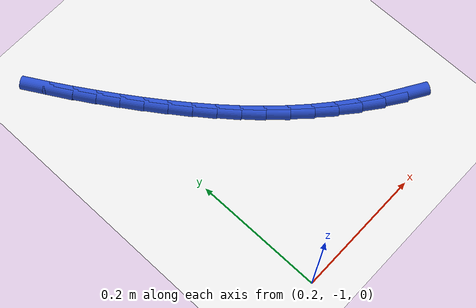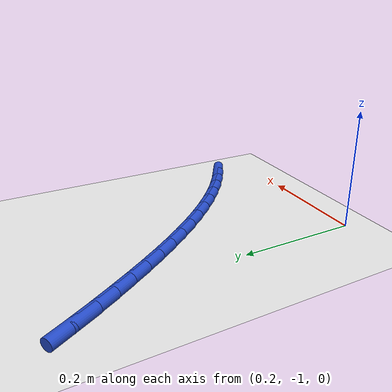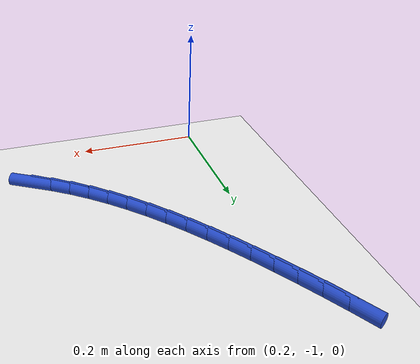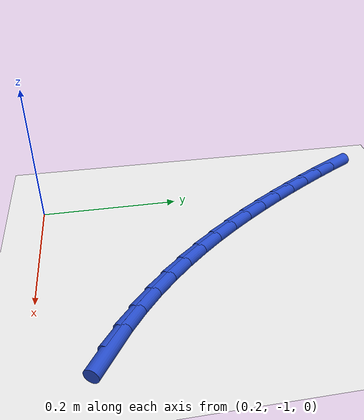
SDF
<sdf version="1.6">
 <world name="default">
  <model name="ground_plane">
   <static>1</static>
   <link name="link">
    <collision name="collision">
     <geometry><plane><normal>0 0 1</normal><size>100 100</size></plane></geometry>
     <surface><friction><ode><mu>100</mu><mu2>50</mu2></ode></friction></surface>
    </collision>
    <visual name="visual">
     <cast_shadows>0</cast_shadows>
     <geometry><plane><normal>0 0 1</normal><size>100 100</size></plane></geometry>
     <material>
      <script><uri>file://media/materials/scripts/gazebo.material</uri><name>Gazebo/WhiteGlow</name></script>
     </material>
    </visual>
   </link>
  </model>
  <model name="line">
   <link name="link_169">
    <pose>0.4986801535756801 -0.9111871560460412 0.01 0 1.57 -0.5459001267739371</pose>
    <collision name="collision">
     <geometry><cylinder><radius>0.01</radius><length>0.08</length></cylinder></geometry>
    </collision>
    <visual name="visual">
     <material>
      <script><name>Gazebo/Blue</name><uri>file://media/materials/scripts/gazebo.material</uri></script>
     </material>
     <geometry><cylinder><radius>0.01</radius><length>0.08</length></cylinder></geometry>
    </visual>
   </link>
   <link name="link_170">
    <pose>0.4695616104032035 -0.8934982724041167 0.01 0 1.57 -0.6046194737512874</pose>
    <collision name="collision">
     <geometry><cylinder><radius>0.01</radius><length>0.08</length></cylinder></geometry>
    </collision>
    <visual name="visual">
     <material>
      <script><name>Gazebo/Blue</name><uri>file://media/materials/scripts/gazebo.material</uri></script>
     </material>
     <geometry><cylinder><radius>0.01</radius><length>0.08</length></cylinder></geometry>
    </visual>
   </link>
   <link name="link_171">
    <pose>0.4414802276402733 -0.8740957233721873 0.01 0 1.57 -0.6593869165937236</pose>
    <collision name="collision">
     <geometry><cylinder><radius>0.01</radius><length>0.08</length></cylinder></geometry>
    </collision>
    <visual name="visual">
     <material>
      <script><name>Gazebo/Blue</name><uri>file://media/materials/scripts/gazebo.material</uri></script>
     </material>
     <geometry><cylinder><radius>0.01</radius><length>0.08</length></cylinder></geometry>
    </visual>
   </link>
   <link name="link_172">
    <pose>0.41439938905295864 -0.8531047421833551 0.01 0 1.57 -0.7098246914687202</pose>
    <collision name="collision">
     <geometry><cylinder><radius>0.01</radius><length>0.08</length></cylinder></geometry>
    </collision>
    <visual name="visual">
     <material>
      <script><name>Gazebo/Blue</name><uri>file://media/materials/scripts/gazebo.material</uri></script>
     </material>
     <geometry><cylinder><radius>0.01</radius><length>0.08</length></cylinder></geometry>
    </visual>
   </link>
   <link name="link_173">
    <pose>0.38827786467886966 -0.8306605044893293 0.01 0 1.57 -0.7559754457071615</pose>
    <collision name="collision">
     <geometry><cylinder><radius>0.01</radius><length>0.08</length></cylinder></geometry>
    </collision>
    <visual name="visual">
     <material>
      <script><name>Gazebo/Blue</name><uri>file://media/materials/scripts/gazebo.material</uri></script>
     </material>
     <geometry><cylinder><radius>0.01</radius><length>0.08</length></cylinder></geometry>
    </visual>
   </link>
   <link name="link_174">
    <pose>0.3630744245556163 -0.8068981859418187 0.01 0 1.57 -0.7979531195619178</pose>
    <collision name="collision">
     <geometry><cylinder><radius>0.01</radius><length>0.08</length></cylinder></geometry>
    </collision>
    <visual name="visual">
     <material>
      <script><name>Gazebo/Blue</name><uri>file://media/materials/scripts/gazebo.material</uri></script>
     </material>
     <geometry><cylinder><radius>0.01</radius><length>0.08</length></cylinder></geometry>
    </visual>
   </link>
   <link name="link_175">
    <pose>0.3387478387208088 -0.7819529621925334 0.01 0 1.57 -0.835916861468123</pose>
    <collision name="collision">
     <geometry><cylinder><radius>0.01</radius><length>0.08</length></cylinder></geometry>
    </collision>
    <visual name="visual">
     <material>
      <script><name>Gazebo/Blue</name><uri>file://media/materials/scripts/gazebo.material</uri></script>
     </material>
     <geometry><cylinder><radius>0.01</radius><length>0.08</length></cylinder></geometry>
    </visual>
   </link>
   <link name="link_176">
    <pose>0.31525687721205736 -0.7559600088931828 0.01 0 1.57 -0.8700494962378399</pose>
    <collision name="collision">
     <geometry><cylinder><radius>0.01</radius><length>0.08</length></cylinder></geometry>
    </collision>
    <visual name="visual">
     <material>
      <script><name>Gazebo/Blue</name><uri>file://media/materials/scripts/gazebo.material</uri></script>
     </material>
     <geometry><cylinder><radius>0.01</radius><length>0.08</length></cylinder></geometry>
    </visual>
   </link>
   <link name="link_177">
    <pose>0.29256031006697186 -0.7290545016954759 0.01 0 1.57 -0.9005406847801825</pose>
    <collision name="collision">
     <geometry><cylinder><radius>0.01</radius><length>0.08</length></cylinder></geometry>
    </collision>
    <visual name="visual">
     <material>
      <script><name>Gazebo/Blue</name><uri>file://media/materials/scripts/gazebo.material</uri></script>
     </material>
     <geometry><cylinder><radius>0.01</radius><length>0.08</length></cylinder></geometry>
    </visual>
   </link>
   <link name="link_178">
    <pose>0.27061690732316274 -0.7013716162511224 0.01 0 1.57 -0.9275742708827042</pose>
    <collision name="collision">
     <geometry><cylinder><radius>0.01</radius><length>0.08</length></cylinder></geometry>
    </collision>
    <visual name="visual">
     <material>
      <script><name>Gazebo/Blue</name><uri>file://media/materials/scripts/gazebo.material</uri></script>
     </material>
     <geometry><cylinder><radius>0.01</radius><length>0.08</length></cylinder></geometry>
    </visual>
   </link>
   <link name="link_179">
    <pose>0.24938543901823992 -0.6730465282118316 0.01 0 1.57 -0.9513190206018596</pose>
    <collision name="collision">
     <geometry><cylinder><radius>0.01</radius><length>0.08</length></cylinder></geometry>
    </collision>
    <visual name="visual">
     <material>
      <script><name>Gazebo/Blue</name><uri>file://media/materials/scripts/gazebo.material</uri></script>
     </material>
     <geometry><cylinder><radius>0.01</radius><length>0.08</length></cylinder></geometry>
    </visual>
   </link>
   <link name="link_180">
    <pose>0.22882467518981353 -0.6442144132293126 0.01 0 1.57 -0.9719218937027068</pose>
    <collision name="collision">
     <geometry><cylinder><radius>0.01</radius><length>0.08</length></cylinder></geometry>
    </collision>
    <visual name="visual">
     <material>
      <script><name>Gazebo/Blue</name><uri>file://media/materials/scripts/gazebo.material</uri></script>
     </material>
     <geometry><cylinder><radius>0.01</radius><length>0.08</length></cylinder></geometry>
    </visual>
   </link>
   <link name="link_181">
    <pose>0.20889338587549372 -0.6150104469552751 0.01 0 1.57 -0.9895034338385656</pose>
    <collision name="collision">
     <geometry><cylinder><radius>0.01</radius><length>0.08</length></cylinder></geometry>
    </collision>
    <visual name="visual">
     <material>
      <script><name>Gazebo/Blue</name><uri>file://media/materials/scripts/gazebo.material</uri></script>
     </material>
     <geometry><cylinder><radius>0.01</radius><length>0.08</length></cylinder></geometry>
    </visual>
   </link>
   <link name="link_182">
    <pose>0.18955034869033943 -0.5855697911819019 0.01 0 1.57 -1.005310780626801</pose>
    <collision name="collision">
     <geometry><cylinder><radius>0.01</radius><length>0.08</length></cylinder></geometry>
    </collision>
    <visual name="visual">
     <material>
      <script><name>Gazebo/Blue</name><uri>file://media/materials/scripts/gazebo.material</uri></script>
     </material>
     <geometry><cylinder><radius>0.01</radius><length>0.08</length></cylinder></geometry>
    </visual>
   </link>
   <link name="link_183">
    <pose>0.1707765625463374 -0.5559869638559173 0.01 0 1.57 -1.0230900299374022</pose>
    <collision name="collision">
     <geometry><cylinder><radius>0.01</radius><length>0.08</length></cylinder></geometry>
    </collision>
    <visual name="visual">
     <material>
      <script><name>Gazebo/Blue</name><uri>file://media/materials/scripts/gazebo.material</uri></script>
     </material>
     <geometry><cylinder><radius>0.01</radius><length>0.08</length></cylinder></geometry>
    </visual>
   </link>
   <link name="link_184">
    <pose>0.15262407526414418 -0.5262265309741961 0.01 0 1.57 -1.043584671949084</pose>
    <collision name="collision">
     <geometry><cylinder><radius>0.01</radius><length>0.08</length></cylinder></geometry>
    </collision>
    <visual name="visual">
     <material>
      <script><name>Gazebo/Blue</name><uri>file://media/materials/scripts/gazebo.material</uri></script>
     </material>
     <geometry><cylinder><radius>0.01</radius><length>0.08</length></cylinder></geometry>
    </visual>
   </link>
  </model>
 </world>
</sdf>
